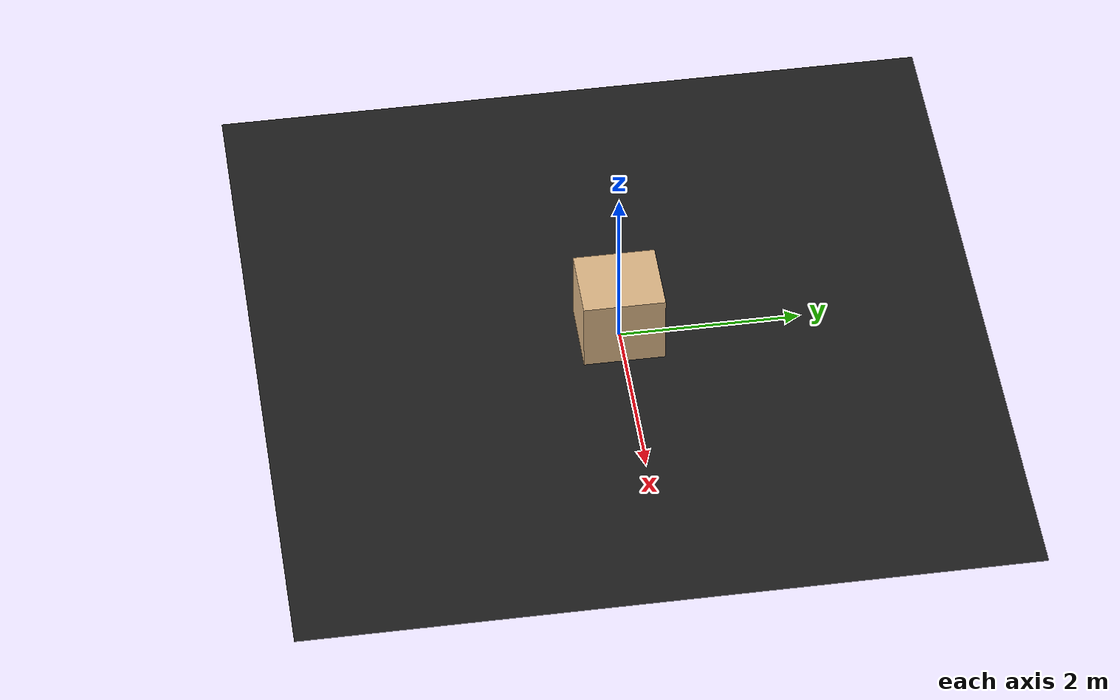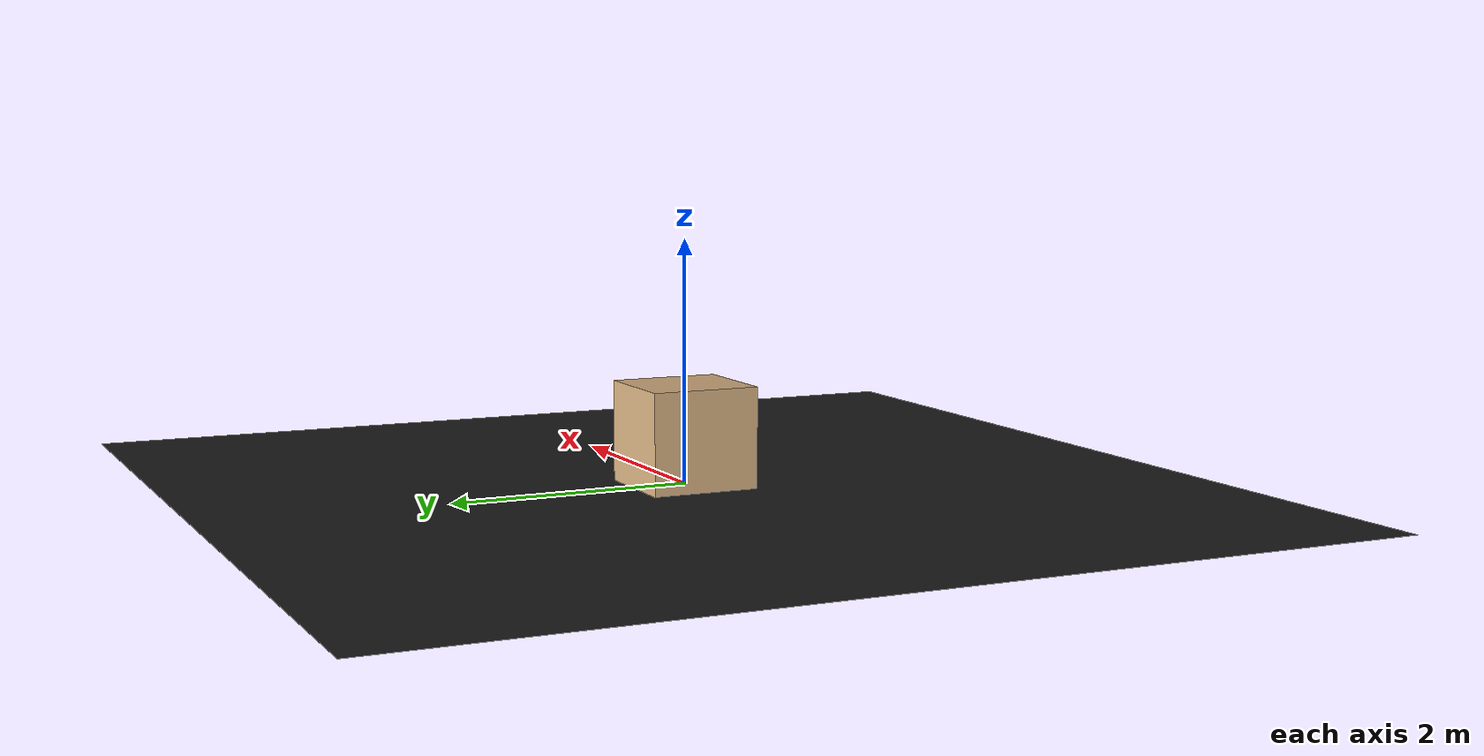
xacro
<?xml version="1.0"?>
<robot xmlns:xacro="http://www.ros.org/wiki/xacro" name="syn_table" >

  <xacro:arg name="floating_table" default="false" />

  <xacro:property name="roomheight" value="3.0" />
  <xacro:property name="tableheight" value="0.83" />
  <xacro:property name="tablewidth" value="0.83" />
  <xacro:property name="tabledepth" value="0.9" />
  <xacro:property name="ur10_mount_offset_y" value="-0.212" />
  <xacro:property name="scan_offset_x" value="0.00" />
  <xacro:property name="scan_offset_y" value="-0.40" />
  <xacro:property name="scan_offset_z" value="0.095" />

  <material name="white">
    <color rgba="1 1 1 1"/>
  </material>
  <material name="brown">
    <color rgba="0.87 0.72 0.53 1"/>
  </material>
  <material name="lightgray">
    <color rgba="0.6 0.6 0.6 1"/>
  </material>

  <link name="floor">
    <inertial>
      <origin xyz="0.0 0.0 0.0" />
      <mass value="2000" />
      <inertia  ixx="1" ixy="0" ixz="0" iyy="1" iyz="0" izz="1" />
    </inertial>
    <visual>
      <material name="black" />
      <origin xyz="0.0 0.0 0.0" />
      <geometry>
        <box size="8.0 8.0 0.001" />
      </geometry>
    </visual>
    <collision>
      <origin xyz="0.0 0.0 0.0" />
      <geometry>
        <box size="8.0 8.0 0.001" />
      </geometry>
    </collision>
  </link>
  <gazebo reference="floor">
    <material>Gazebo/Blue</material>
    <turnGravityOff>false</turnGravityOff>
    <selfCollide>true</selfCollide>
    <!-- kp: stiffness kd: damping mu1, mu2: friction -->
    <mu1>100.0</mu1>
    <mu2>100.0</mu2>
    <kp>1000000.0</kp>
    <kd>1.0</kd>
  </gazebo>

  <link name="table">
    <inertial>
      <origin xyz="0 0 ${tableheight/2}" />
      <mass value="10" />
      <inertia  ixx="1" ixy="0" ixz="0" iyy="1" iyz="0" izz="1" />
    </inertial>
    <visual>
      <material name="brown" />
      <origin xyz="0.0 0.0 ${tableheight/2}" />
      <geometry>
        <box size="${tablewidth} ${tabledepth} ${tableheight}" />
      </geometry>
    </visual>
    <collision>
      <origin xyz="0.0 0.0 ${tableheight/2}" />
      <geometry>
        <box size="${tablewidth} ${tabledepth} ${tableheight}" />
      </geometry>
    </collision>
  </link>
  <gazebo reference="table">
    <material>Gazebo/Blue</material>
    <turnGravityOff>false</turnGravityOff>
    <selfCollide>true</selfCollide>
    <mu1>100.0</mu1>
    <mu2>100.0</mu2>
    <kp>1000000.0</kp>
    <kd>1.0</kd>
  </gazebo>

  <link name="table_top"/>

  <link name="ur10_mount"/>

  <link name="scan"/>

  <joint name="table_floor_joint" type="floating">
    <parent link="floor"/>
    <child link="table"/>
    <origin xyz="0 0 0" rpy="0 0 0" />
  </joint>

  <joint name="table_top_joint" type="fixed">
    <parent link="table"/>
    <child link="table_top"/>
	  <origin xyz="0 0 ${tableheight}" rpy="0 0 0" />
  </joint>

  <joint name="ur10_mount_table_top_joint" type="fixed">
    <parent link="table_top"/>
    <child link="ur10_mount"/>
	  <origin xyz="0 ${ur10_mount_offset_y} 0" rpy="0 0 0" />
  </joint>

  <joint name="scan_table_top_joint" type="fixed">
    <parent link="table_top"/>
    <child link="scan"/>
	  <origin xyz="${scan_offset_x} ${scan_offset_y} ${scan_offset_z}" rpy="0 0 0" />
  </joint>

</robot>
